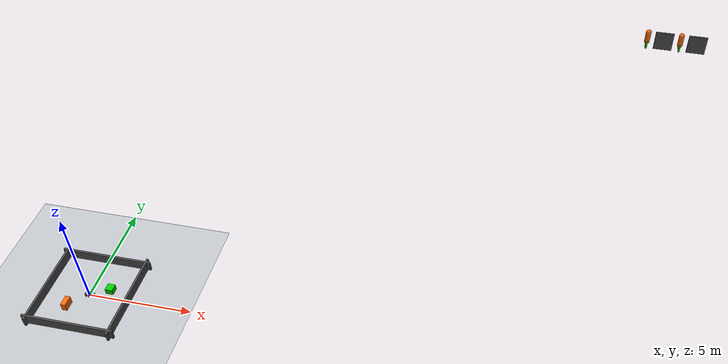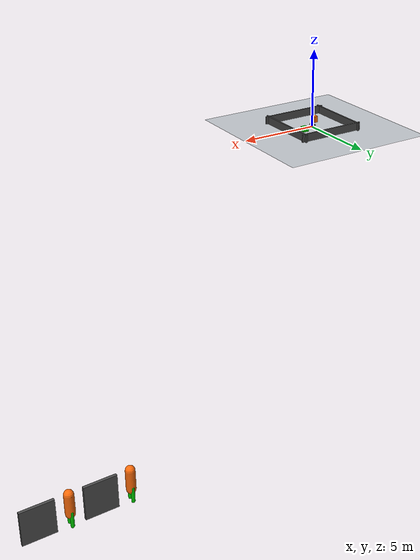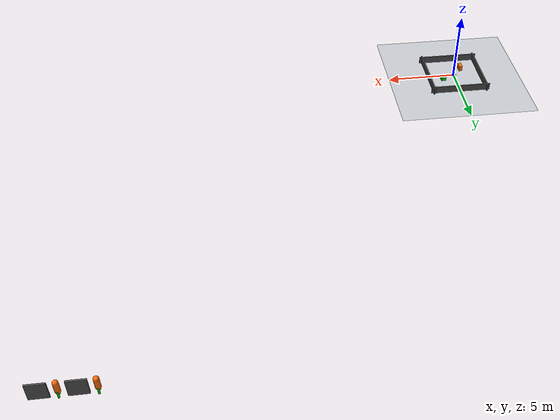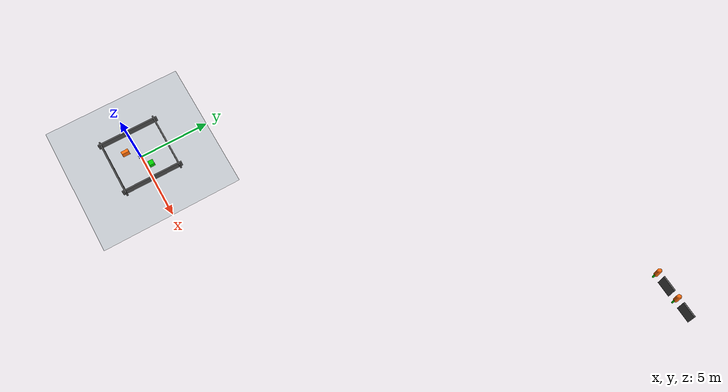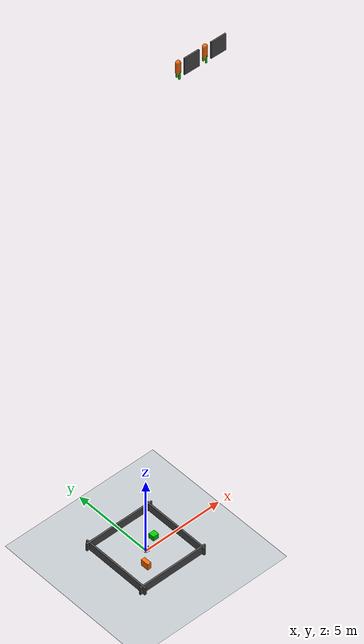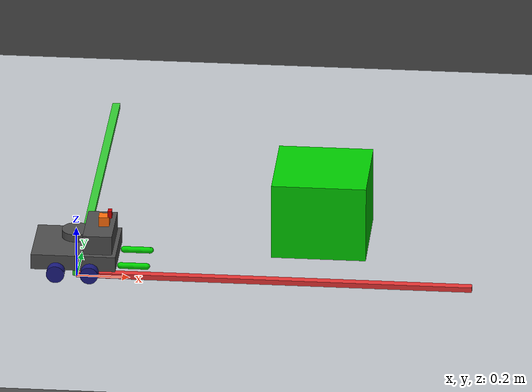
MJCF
<mujoco model="mecanumbot">

  <compiler angle="radian"/>

  <option timestep="0.002" cone="elliptic" impratio="10"/>

  <asset>
    <material name="dark" rgba="0.3 0.3 0.3 1"/>
    <material name="light_blue" rgba="0.1 0.1 0.5 1"/>
    <material name="green" rgba="0.0 0.8 0.0 1"/>
    <material name="orange" rgba="1.0 0.4235 0.0392 1"/>
    <material name="red" rgba="0.8 0.0 0.0 1"/>
    <material name="axis_x" rgba="0.9 0.2 0.2 1"/>
    <material name="axis_y" rgba="0.2 0.8 0.2 1"/>
    <texture name="ground_checker" type="2d" builtin="checker" rgb1="0.82 0.84 0.86" rgb2="0.68 0.70 0.72" width="512" height="512"/>
    <material name="ground" texture="ground_checker" texrepeat="10 10" reflectance="0.05"/>

  </asset>

  <default>
    <default class="visual">
      <geom contype="0" conaffinity="0" density="0" group="2"/>
    </default>

    <default class="wheel">
      <joint axis="0 0 1" limited="false" damping="0.2" frictionloss="0.05" armature="0.01"/>
      <velocity ctrllimited="true" ctrlrange="-30 30" kv="4.0"/>
    </default>
  </default>

  <worldbody>
    <light name="sun" pos="0 0 4" dir="0 0 -1" directional="true" diffuse="0.95 0.95 0.95" specular="0.25 0.25 0.25" ambient="0.35 0.35 0.35"/>
    <light name="fill" pos="2 -2 2.5" diffuse="0.6 0.6 0.6" specular="0.1 0.1 0.1"/>
    <geom name="floor" type="plane" size="5 5 0.1" pos="0 0 0" material="ground" friction="1.0 0.05 0.05"/>
    <geom name="x_axis_ref" type="box" pos="0.75 0 0.01" size="0.75 0.015 0.01" material="axis_x" contype="0" conaffinity="0"/>
    <geom name="y_axis_ref" type="box" pos="0 0.75 0.01" size="0.015 0.75 0.01" material="axis_y" contype="0" conaffinity="0"/>
    <geom name="wall_north" type="box" pos="0 2.0 0.25" size="2.2 0.05 0.25" material="dark"/>
    <geom name="wall_south" type="box" pos="0 -2.0 0.25" size="2.2 0.05 0.25" material="dark"/>
    <geom name="wall_east" type="box" pos="2.0 0 0.25" size="0.05 2.2 0.25" material="dark"/>
    <geom name="wall_west" type="box" pos="-2.0 0 0.25" size="0.05 2.2 0.25" material="dark"/>
    <geom name="box_obstacle_a" type="box" pos="0.9 0.4 0.15" size="0.18 0.18 0.15" material="green"/>
    <geom name="box_obstacle_b" type="box" pos="-0.7 -0.8 0.2" size="0.12 0.25 0.2" material="orange"/>

    <body name="sim_human_0" mocap="true" pos="25 25 0">
      <geom name="sim_human_0_torso" type="capsule" fromto="0 0 0.45 0 0 1.15" size="0.16" material="orange"/>
      <geom name="sim_human_0_leg_left" type="capsule" fromto="0 0.11 0.05 0 0.11 0.55" size="0.06" material="green"/>
      <geom name="sim_human_0_leg_right" type="capsule" fromto="0 -0.11 0.05 0 -0.11 0.55" size="0.06" material="green"/>
    </body>

    <body name="sim_wall_panel_0" mocap="true" pos="26 25 0">
      <geom name="sim_wall_panel_0_geom" type="box" pos="0 0 0.6" size="0.55 0.05 0.6" material="dark"/>
    </body>

    <body name="sim_human_1" mocap="true" pos="27 25 0">
      <geom name="sim_human_1_torso" type="capsule" fromto="0 0 0.45 0 0 1.15" size="0.16" material="orange"/>
      <geom name="sim_human_1_leg_left" type="capsule" fromto="0 0.11 0.05 0 0.11 0.55" size="0.06" material="green"/>
      <geom name="sim_human_1_leg_right" type="capsule" fromto="0 -0.11 0.05 0 -0.11 0.55" size="0.06" material="green"/>
    </body>

    <body name="sim_wall_panel_1" mocap="true" pos="28 25 0">
      <geom name="sim_wall_panel_1_geom" type="box" pos="0 0 0.6" size="0.55 0.05 0.6" material="dark"/>
    </body>

    <body name="base_link" pos="0 0 0.06">
      <inertial pos="0 0 0.06" mass="3.0" diaginertia="0.04 0.04 0.04"/>
      <joint name="base_free" type="free"/>

      <geom type="box" pos="0 0 0.055" size="0.16 0.13 0.03" material="dark" friction="1.0 0.05 0.05"/>
      <geom type="box" pos="0.09 0 0.12" size="0.055 0.11 0.04" material="dark" class="visual"/>

      <body name="wheel_frontleft" pos="0.064 0.1522 0.02345" quat="0.707 0.707 0 0">
        <inertial pos="0 0 0" mass="0.15" diaginertia="0.0002 0.0002 0.0002"/>
        <joint name="wheel_frontleft_joint" class="wheel"/>
        <geom type="cylinder" size="0.034 0.018" material="light_blue" friction="1.2 0.05 0.05"/>
      </body>

      <body name="wheel_backleft" pos="-0.064 0.1522 0.02345" quat="0.707 0.707 0 0">
        <inertial pos="0 0 0" mass="0.15" diaginertia="0.0002 0.0002 0.0002"/>
        <joint name="wheel_backleft_joint" class="wheel"/>
        <geom type="cylinder" size="0.034 0.018" material="light_blue" friction="1.2 0.05 0.05"/>
      </body>

      <body name="wheel_frontright" pos="0.064 -0.1522 0.02345" quat="0.707 -0.707 0 0">
        <inertial pos="0 0 0" mass="0.15" diaginertia="0.0002 0.0002 0.0002"/>
        <joint name="wheel_frontright_joint" class="wheel"/>
        <geom type="cylinder" size="0.034 0.018" material="light_blue" friction="1.2 0.05 0.05"/>
      </body>

      <body name="wheel_backright" pos="-0.064 -0.1522 0.02345" quat="0.707 -0.707 0 0">
        <inertial pos="0 0 0" mass="0.15" diaginertia="0.0002 0.0002 0.0002"/>
        <joint name="wheel_backright_joint" class="wheel"/>
        <geom type="cylinder" size="0.034 0.018" material="light_blue" friction="1.2 0.05 0.05"/>
      </body>

      <body name="grabber_right" pos="0.174 -0.070 0.024">
        <inertial pos="0 0 0" mass="0.05" diaginertia="0.0001 0.0001 0.0001"/>
        <joint name="grabber_right_joint" range="-1.57 1.57" limited="true" damping="0.2"/>
        <geom type="capsule" fromto="0 0 0 0.10 0 0" size="0.012" material="green" class="visual"/>
      </body>

      <body name="grabber_left" pos="0.174 0.070 0.024">
        <inertial pos="0 0 0" mass="0.05" diaginertia="0.0001 0.0001 0.0001"/>
        <joint name="grabber_left_joint" range="-1.57 1.57" limited="true" damping="0.2"/>
        <geom type="capsule" fromto="0 0 0 0.10 0 0" size="0.012" material="green" class="visual"/>
      </body>

      <body name="head" pos="0.1063 0 0.1679" quat="0.707 0.707 0 0">
        <inertial pos="0 0 0" mass="0.08" diaginertia="0.0002 0.0002 0.0002"/>
        <joint name="head_joint" range="-1.57 1.57" limited="true" damping="0.2"/>
        <geom type="box" size="0.02 0.03 0.02" material="orange" class="visual"/>

        <body name="camera" pos="0.022 0.038 0">
          <geom type="box" size="0.0075 0.015 0.0135" material="red" class="visual"/>
        </body>
      </body>

      <body name="base_scan" pos="0 0 0.122">
        <geom type="cylinder" size="0.055 0.015" material="dark" class="visual"/>
      </body>
    </body>
  </worldbody>

  <actuator>
    <velocity name="bl" joint="wheel_backleft_joint"/>
    <velocity name="br" joint="wheel_backright_joint"/>
    <velocity name="fl" joint="wheel_frontleft_joint"/>
    <velocity name="fr" joint="wheel_frontright_joint"/>
    <position name="grabber_left" joint="grabber_left_joint"/>
    <position name="grabber_right" joint="grabber_right_joint"/>
    <position name="head" joint="head_joint"/>
  </actuator>

  <contact>
    <exclude body1="base_link" body2="wheel_frontleft"/>
    <exclude body1="base_link" body2="wheel_frontright"/>
    <exclude body1="base_link" body2="wheel_backleft"/>
    <exclude body1="base_link" body2="wheel_backright"/>
  </contact>

</mujoco>
